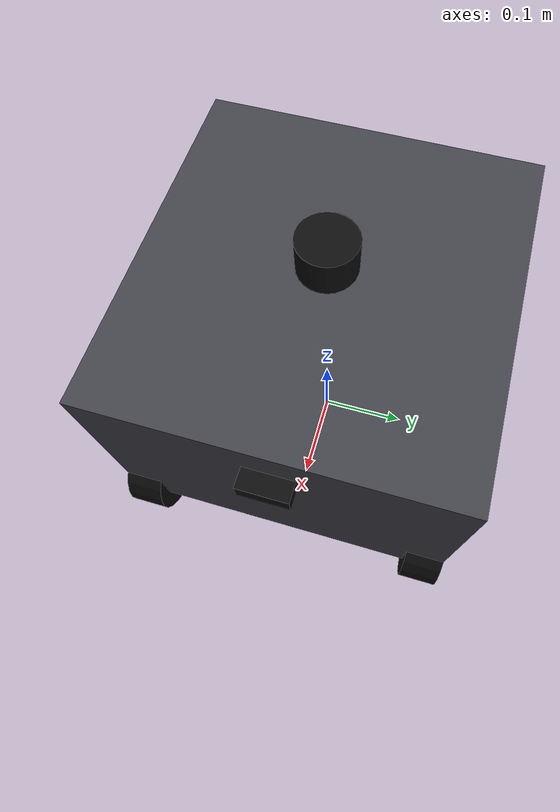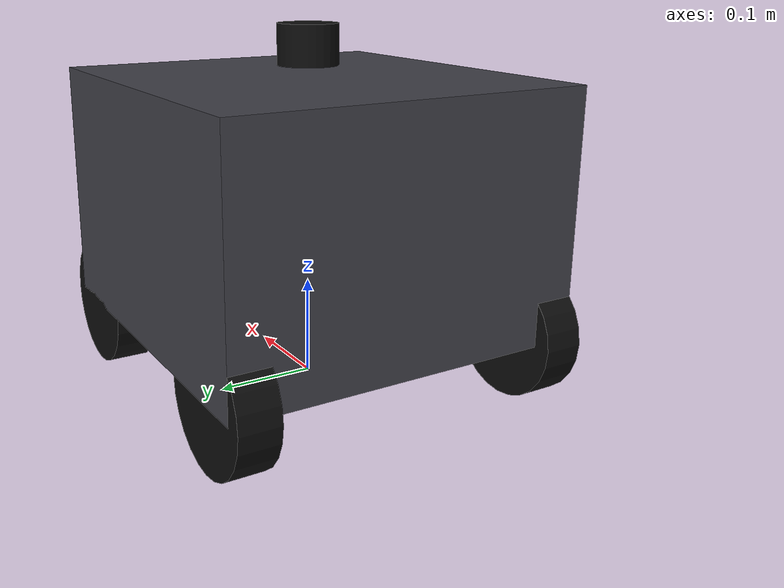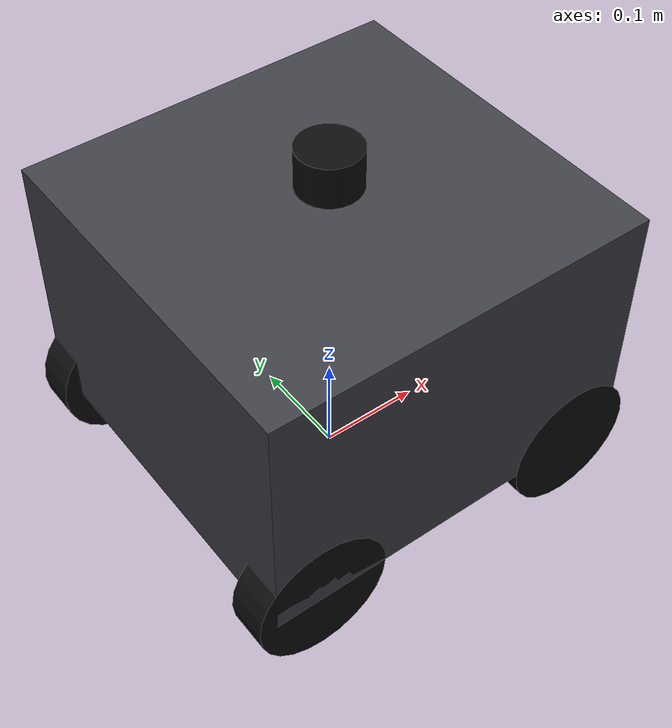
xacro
<?xml version="1.0"?>
<robot name="beetlebot" xmlns:xacro="http://www.ros.org/wiki/xacro">

  <xacro:property name="chassis_length" value="0.375"/>
  <xacro:property name="chassis_width" value="0.36"/>
  <xacro:property name="chassis_height" value="0.245"/>
  <xacro:property name="chassis_mass" value="1.8"/>

  <xacro:property name="wheel_radius" value="0.065"/>
  <xacro:property name="wheel_width" value="0.04"/>
  <xacro:property name="wheel_mass" value="0.1"/>
  <xacro:property name="track_width" value="0.32"/>
  <xacro:property name="wheel_base" value="0.28"/>

  <material name="chassis_grey"><color rgba="0.25 0.25 0.28 1.0"/></material>
  <material name="wheel_black"><color rgba="0.05 0.05 0.05 1.0"/></material>

  <link name="base_footprint"/>

  <joint name="base_footprint_joint" type="fixed">
    <parent link="base_footprint"/>
    <child link="base_link"/>
    <origin xyz="0 0 ${wheel_radius}" rpy="0 0 0"/>
  </joint>

  <link name="base_link">
    <inertial>
      <mass value="${chassis_mass}"/>
      <origin xyz="0 0 ${chassis_height/2}" rpy="0 0 0"/>
      <inertia
        ixx="${chassis_mass/12.0*(chassis_width*chassis_width+chassis_height*chassis_height)}" ixy="0" ixz="0"
        iyy="${chassis_mass/12.0*(chassis_length*chassis_length+chassis_height*chassis_height)}" iyz="0"
        izz="${chassis_mass/12.0*(chassis_length*chassis_length+chassis_width*chassis_width)}"/>
    </inertial>
    <visual>
      <origin xyz="0 0 ${chassis_height/2}" rpy="0 0 0"/>
      <geometry><box size="${chassis_length} ${chassis_width} ${chassis_height}"/></geometry>
      <material name="chassis_grey"/>
    </visual>
    <collision>
      <origin xyz="0 0 ${chassis_height/2}" rpy="0 0 0"/>
      <geometry><box size="${chassis_length} ${chassis_width} ${chassis_height}"/></geometry>
    </collision>
  </link>

  <xacro:macro name="wheel" params="prefix x_reflect y_reflect">
    <link name="${prefix}_wheel">
      <inertial>
        <mass value="${wheel_mass}"/>
        <inertia ixx="0.00013" ixy="0" ixz="0" iyy="0.00013" iyz="0" izz="0.00021"/>
      </inertial>
      <visual>
        <origin xyz="0 0 0" rpy="1.5708 0 0"/>
        <geometry><cylinder radius="${wheel_radius}" length="${wheel_width}"/></geometry>
        <material name="wheel_black"/>
      </visual>
      <collision>
        <origin xyz="0 0 0" rpy="1.5708 0 0"/>
        <geometry><cylinder radius="${wheel_radius}" length="${wheel_width}"/></geometry>
      </collision>
    </link>
    <joint name="${prefix}_wheel_joint" type="continuous">
      <parent link="base_link"/>
      <child link="${prefix}_wheel"/>
      <origin xyz="${x_reflect*wheel_base/2} ${y_reflect*track_width/2} 0" rpy="0 0 0"/>
      <axis xyz="0 1 0"/>
    </joint>
  </xacro:macro>

  <xacro:wheel prefix="front_left"  x_reflect="1"  y_reflect="1"/>
  <xacro:wheel prefix="front_right" x_reflect="1"  y_reflect="-1"/>
  <xacro:wheel prefix="rear_left"   x_reflect="-1" y_reflect="1"/>
  <xacro:wheel prefix="rear_right"  x_reflect="-1" y_reflect="-1"/>

  <!-- Sensors: frame placement and topic names mirror the real BeetleBot exactly so
       nodes built against this simulation need no topic remapping in Phase 2. -->

  <link name="lidar_link">
    <visual><geometry><cylinder radius="0.03" length="0.04"/></geometry><material name="wheel_black"/></visual>
    <collision><geometry><cylinder radius="0.03" length="0.04"/></geometry></collision>
    <inertial><mass value="0.05"/><inertia ixx="1e-5" ixy="0" ixz="0" iyy="1e-5" iyz="0" izz="1e-5"/></inertial>
  </link>
  <joint name="lidar_joint" type="fixed">
    <parent link="base_link"/>
    <child link="lidar_link"/>
    <origin xyz="0 0 ${chassis_height + 0.03}" rpy="0 0 0"/>
  </joint>

  <link name="camera_link">
    <visual><geometry><box size="0.02 0.05 0.02"/></geometry><material name="wheel_black"/></visual>
    <collision><geometry><box size="0.02 0.05 0.02"/></geometry></collision>
    <inertial><mass value="0.02"/><inertia ixx="1e-6" ixy="0" ixz="0" iyy="1e-6" iyz="0" izz="1e-6"/></inertial>
  </link>
  <joint name="camera_joint" type="fixed">
    <parent link="base_link"/>
    <child link="camera_link"/>
    <origin xyz="${chassis_length/2 + 0.01} 0 ${chassis_height - 0.05}" rpy="0 0 0"/>
  </joint>

  <link name="camera_optical_link"/>
  <joint name="camera_optical_joint" type="fixed">
    <parent link="camera_link"/>
    <child link="camera_optical_link"/>
    <origin xyz="0 0 0" rpy="${-pi/2} 0 ${-pi/2}"/>
  </joint>

  <link name="imu_link">
    <visual><geometry><box size="0.01 0.01 0.005"/></geometry></visual>
    <collision><geometry><box size="0.01 0.01 0.005"/></geometry></collision>
    <inertial><mass value="0.01"/><inertia ixx="1e-6" ixy="0" ixz="0" iyy="1e-6" iyz="0" izz="1e-6"/></inertial>
  </link>
  <joint name="imu_joint" type="fixed">
    <parent link="base_link"/>
    <child link="imu_link"/>
    <origin xyz="0 0 0.03" rpy="0 0 0"/>
  </joint>

  <gazebo>
    <plugin filename="gz-sim-diff-drive-system" name="gz::sim::systems::DiffDrive">
      <left_joint>front_left_wheel_joint</left_joint>
      <left_joint>rear_left_wheel_joint</left_joint>
      <right_joint>front_right_wheel_joint</right_joint>
      <right_joint>rear_right_wheel_joint</right_joint>
      <wheel_separation>${track_width}</wheel_separation>
      <wheel_radius>${wheel_radius}</wheel_radius>
      <odom_publish_frequency>50</odom_publish_frequency>
      <topic>cmd_vel</topic>
      <odom_topic>wheel/odom</odom_topic>
      <frame_id>odom</frame_id>
      <child_frame_id>base_footprint</child_frame_id>
      <tf_topic>tf</tf_topic>
      <publish_tf>true</publish_tf>
    </plugin>
    <plugin filename="gz-sim-joint-state-publisher-system" name="gz::sim::systems::JointStatePublisher">
      <topic>joint_states</topic>
    </plugin>
  </gazebo>

  <gazebo reference="lidar_link">
    <sensor name="rplidar_c1" type="gpu_lidar">
      <pose>0 0 0 0 0 0</pose>
      <topic>scan</topic>
      <update_rate>10</update_rate>
      <always_on>true</always_on>
      <visualize>false</visualize>
      <lidar>
        <scan>
          <horizontal>
            <samples>360</samples>
            <resolution>1</resolution>
            <min_angle>-3.14159</min_angle>
            <max_angle>3.14159</max_angle>
          </horizontal>
        </scan>
        <range>
          <min>0.12</min>
          <max>12.0</max>
          <resolution>0.01</resolution>
        </range>
      </lidar>
    </sensor>
  </gazebo>

  <gazebo reference="camera_link">
    <sensor name="pi_camera" type="camera">
      <pose>0 0 0 0 0 0</pose>
      <topic>pi_camera/image_raw</topic>
      <update_rate>15</update_rate>
      <always_on>true</always_on>
      <visualize>false</visualize>
      <camera>
        <horizontal_fov>1.2</horizontal_fov>
        <image><width>640</width><height>480</height><format>R8G8B8</format></image>
        <clip><near>0.05</near><far>30.0</far></clip>
        <optical_frame_id>camera_optical_link</optical_frame_id>
      </camera>
    </sensor>
  </gazebo>

  <gazebo reference="imu_link">
    <sensor name="imu_sensor" type="imu">
      <pose>0 0 0 0 0 0</pose>
      <topic>imu/data</topic>
      <update_rate>100</update_rate>
      <always_on>true</always_on>
    </sensor>
  </gazebo>

</robot>
